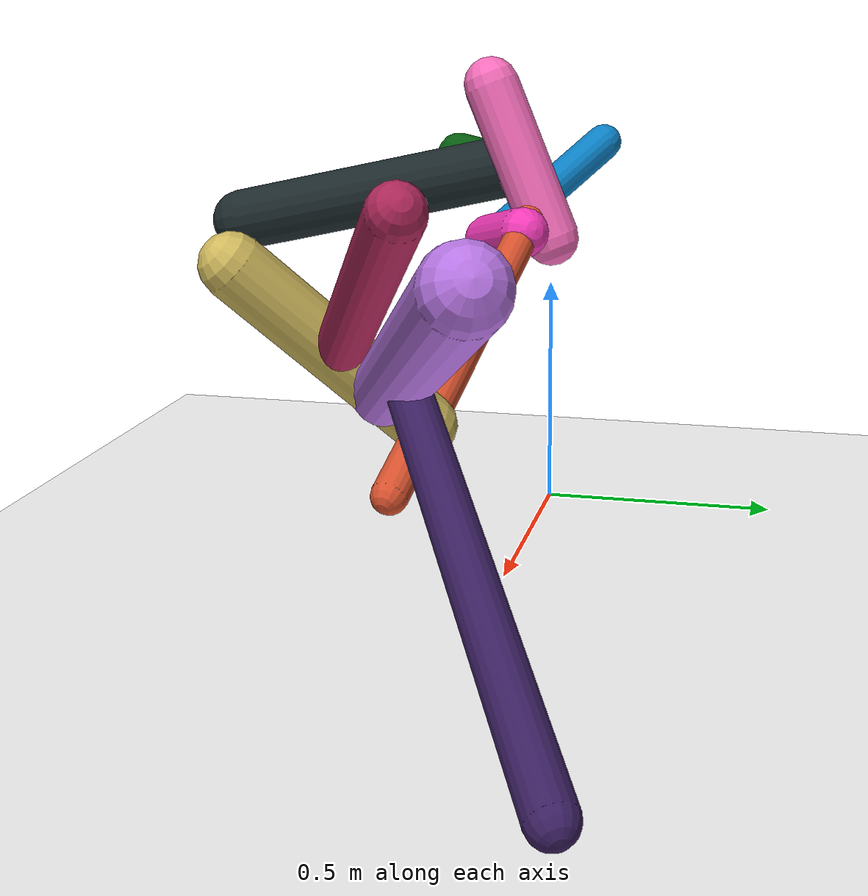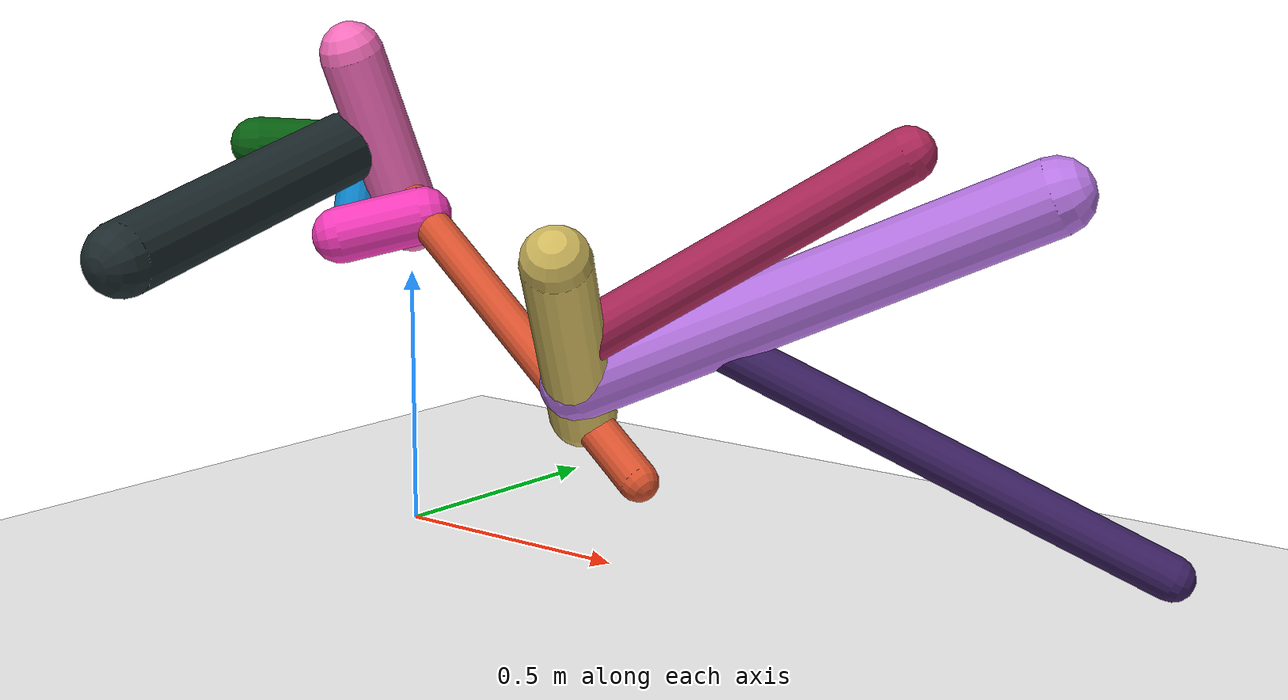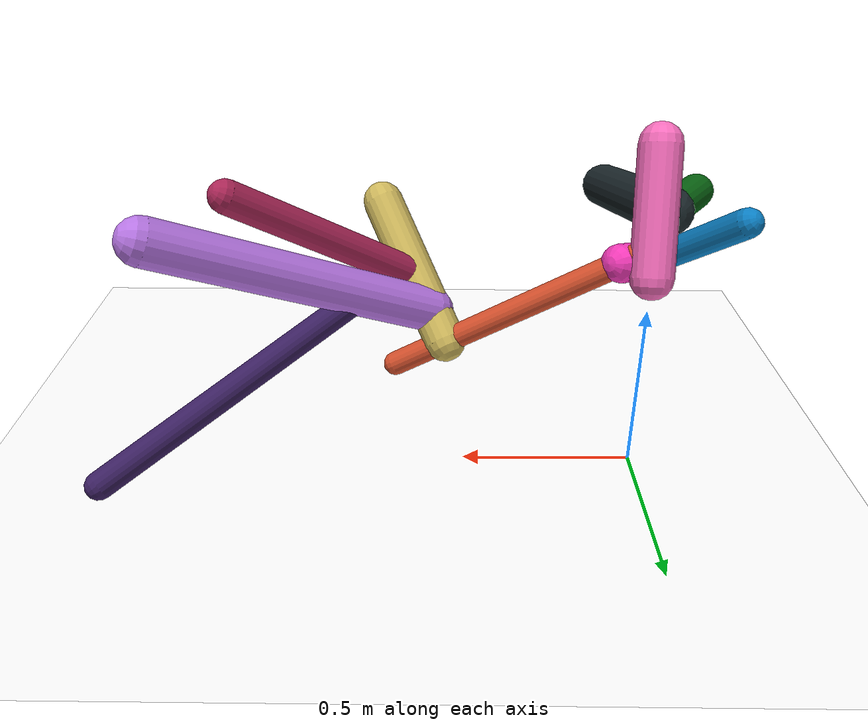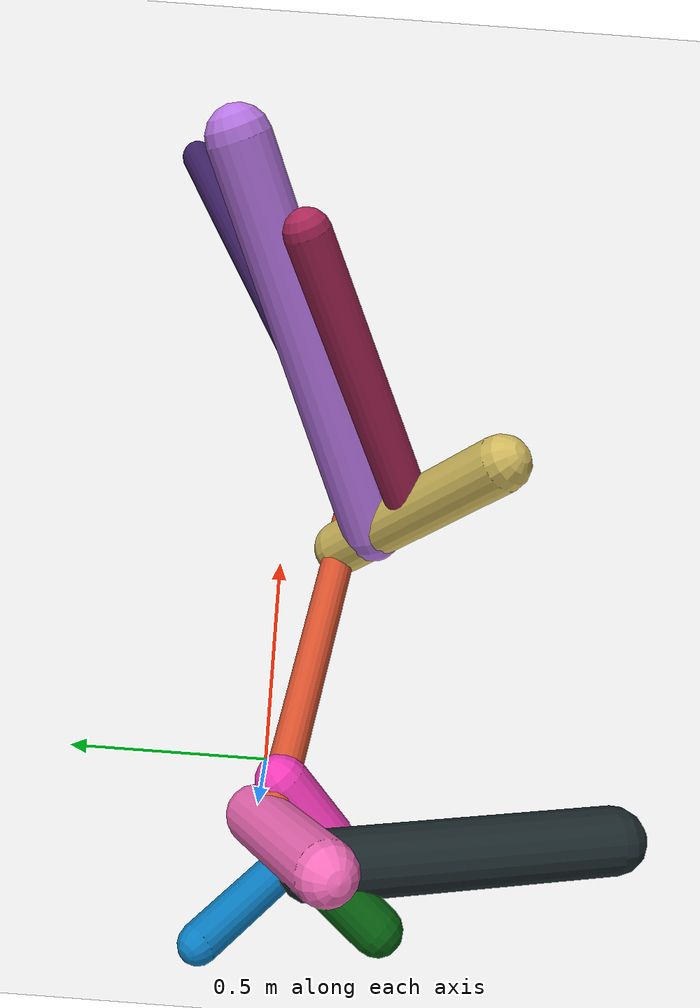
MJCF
<mujoco model="morphology">
  <option timestep="0.01"/>
  <default>
    <default class="/"/>
    <default class="0/"/>
    <default class="0/1/"/>
    <default class="0/1/2/"/>
    <default class="0/1/2/3/"/>
    <default class="0/1/4/"/>
    <default class="0/1/4/5/"/>
    <default class="0/1/4/5/6/"/>
    <default class="0/1/4/7/"/>
    <default class="0/8/"/>
    <default class="0/8/9/"/>
  </default>
  <asset>
    <texture name="texplane" type="2d" builtin="checker" rgb1="0.10000000000000001 0.20000000000000001 0.29999999999999999" rgb2="0.20000000000000001 0.29999999999999999 0.40000000000000002" width="300" height="300"/>
    <material name="MatPlane" class="/" texture="texplane" texrepeat="20 20" specular="1" shininess="1" reflectance="0.5"/>
  </asset>
  <worldbody>
    <light name="//unnamed_light_0" class="/" directional="true" pos="0 0 1.5" dir="0 0 -1.3" cutoff="100" exponent="1" diffuse="1 1 1" specular="0.10000000000000001 0.10000000000000001 0.10000000000000001"/>
    <geom name="ground" class="/" type="plane" size="15 15 0.5" material="MatPlane" rgba="1 1 1 1"/>
    <site name="body" class="/" size="9.9999999999999995e-07 9.9999999999999995e-07 9.9999999999999995e-07" pos="0 0 0.60265794992446897"/>
    <body pos="0 0 0.60265794992446897" name="0/">
      <freejoint name="0/"/>
      <geom name="0/geom" class="0/" type="capsule" contype="1" conaffinity="1" condim="3" size="0.061595366557953321" rgba="0.96620665865200772 0.42740169958640051 0.73669184252601483 1" friction="0.59999999999999998 0.10000000000000001 0.10000000000000001" fromto="0 0 0 -0.014394066082653256 -0.13921526731980804 0.33393729072455125"/>
      <site name="0/end0" class="0/" size="0.0050000000000000001" pos="-0.014394066082653256 -0.13921526731980804 0.33393729072455125"/>
      <site name="0/attach1" class="0/" size="9.9999999999999995e-07 9.9999999999999995e-07 9.9999999999999995e-07" pos="-0.0032131669070986179 -0.031076826196732323 0.074544346638466527"/>
      <body pos="-0.0032131669070986179 -0.031076826196732323 0.074544346638466527" name="0/1/">
        <joint name="0/1/joint/" class="0/" type="hinge" axis="0 0 1" limited="true" range="-43.290607076956533 43.290607076956533"/>
        <geom name="0/1/geom" class="0/1/" type="capsule" contype="1" conaffinity="1" condim="3" size="0.036548331728457832" rgba="0.8442007170233552 0.32123433594918993 0.1788781393090384 1" friction="0.59999999999999998 0.10000000000000001 0.10000000000000001" fromto="0 0 0 0.71100908405011198 -0.14112998063933391 -0.44802502862288618"/>
        <site name="0/1/end1" class="0/1/" size="0.0050000000000000001" pos="0.71100908405011198 -0.14112998063933391 -0.44802502862288618"/>
        <site name="0/1/attach2" class="0/1/" size="9.9999999999999995e-07 9.9999999999999995e-07 9.9999999999999995e-07" pos="0.081483732357123848 -0.016173910893620941 -0.051344986077599832"/>
        <body pos="0.081483732357123848 -0.016173910893620941 -0.051344986077599832" name="0/1/2/">
          <geom name="0/1/2/geom" class="0/1/2/" type="capsule" contype="1" conaffinity="1" condim="3" size="0.055307921790276923" rgba="0.9547276438194221 0.22589878917662698 0.7237424800669493 1" friction="0.59999999999999998 0.10000000000000001 0.10000000000000001" fromto="0 0 0 -0.12019942853873866 -0.10449915807783494 -0.037901787541282594"/>
          <site name="0/1/2/end2" class="0/1/2/" size="0.0050000000000000001" pos="-0.12019942853873866 -0.10449915807783494 -0.037901787541282594"/>
          <site name="0/1/2/attach3" class="0/1/2/" size="9.9999999999999995e-07 9.9999999999999995e-07 9.9999999999999995e-07" pos="-0.10363666219972793 -0.090099795627382739 -0.032679146647654936"/>
          <body pos="-0.10363666219972793 -0.090099795627382739 -0.032679146647654936" name="0/1/2/3/">
            <joint name="0/1/2/3/joint/" class="0/1/2/" type="hinge" axis="-1.3877787807814457e-17 -0.34096504269001487 0.9400759754740019" limited="true" range="-48.27717350779713 48.27717350779713"/>
            <geom name="0/1/2/3/geom" class="0/1/2/3/" type="capsule" contype="1" conaffinity="1" condim="3" size="0.040529293715580554" rgba="0.039841696854068687 0.49964566554185741 0.76776146137492829 1" friction="0.59999999999999998 0.10000000000000001 0.10000000000000001" fromto="0 0 0 -0.17555682166428743 0.22225781843154313 0.20432625168934881"/>
            <site name="0/1/2/3/end3" class="0/1/2/3/" size="0.0050000000000000001" pos="-0.17555682166428743 0.22225781843154313 0.20432625168934881"/>
          </body>
        </body>
        <site name="0/1/attach4" class="0/1/" size="9.9999999999999995e-07 9.9999999999999995e-07 9.9999999999999995e-07" pos="0.55993885281715972 -0.11114367063660041 -0.35283180790246121"/>
        <body pos="0.55993885281715972 -0.11114367063660041 -0.35283180790246121" name="0/1/4/">
          <geom name="0/1/4/geom" class="0/1/4/" type="capsule" contype="1" conaffinity="1" condim="3" size="0.061823331794121611" rgba="0.81133507924247095 0.72180369755090001 0.36147904128355479 1" friction="0.59999999999999998 0.10000000000000001 0.10000000000000001" fromto="0 0 0 0.19498040652691417 -0.30096265932969019 0.33584939295014982"/>
          <site name="0/1/4/end4" class="0/1/4/" size="0.0050000000000000001" pos="0.19498040652691417 -0.30096265932969019 0.33584939295014982"/>
          <site name="0/1/4/attach5" class="0/1/4/" size="9.9999999999999995e-07 9.9999999999999995e-07 9.9999999999999995e-07" pos="0.042614268686164615 -0.065777397111989822 0.07340212549658115"/>
          <body pos="0.042614268686164615 -0.065777397111989822 0.07340212549658115" name="0/1/4/5/">
            <joint name="0/1/4/5/joint/" class="0/1/4/" type="hinge" axis="0.91788176897117957 0.26484776744371641 -0.29554816573685078" limited="true" range="-61.719637554251292 61.719637554251292"/>
            <geom name="0/1/4/5/geom" class="0/1/4/5/" type="capsule" contype="1" conaffinity="1" condim="3" size="0.068085061742810898" rgba="0.71966595520453924 0.46168795173939059 0.89512065887175551 1" friction="0.59999999999999998 0.10000000000000001 0.10000000000000001" fromto="0 0 0 0.74419373419520474 0.33774747333568489 0.35945266016919986"/>
            <site name="0/1/4/5/end5" class="0/1/4/5/" size="0.0050000000000000001" pos="0.74419373419520474 0.33774747333568489 0.35945266016919986"/>
            <site name="0/1/4/5/attach6" class="0/1/4/5/" size="9.9999999999999995e-07 9.9999999999999995e-07 9.9999999999999995e-07" pos="0.1977507254568785 0.089747877205104507 0.095515483468474105"/>
            <body pos="0.1977507254568785 0.089747877205104507 0.095515483468474105" name="0/1/4/5/6/">
              <joint name="0/1/4/5/6/joint/" class="0/1/4/5/" type="hinge" axis="2.7755575615628914e-17 -0.72876730702357118 0.6847614272238266" limited="true" range="-42.965540270636993 42.965540270636993"/>
              <geom name="0/1/4/5/6/geom" class="0/1/4/5/6/" type="capsule" contype="1" conaffinity="1" condim="3" size="0.040762200454460829" rgba="0.22858954516778696 0.12232476198387632 0.37659041255974202 1" friction="0.59999999999999998 0.10000000000000001 0.10000000000000001" fromto="0 0 0 0.70930303062571021 0.39788972655855392 -0.39328808179044672"/>
              <site name="0/1/4/5/6/end6" class="0/1/4/5/6/" size="0.0050000000000000001" pos="0.70930303062571021 0.39788972655855392 -0.39328808179044672"/>
            </body>
          </body>
          <site name="0/1/4/attach7" class="0/1/4/" size="9.9999999999999995e-07 9.9999999999999995e-07 9.9999999999999995e-07" pos="0.091036266606800462 -0.14051933412933659 0.15680793481226829"/>
          <body pos="0.091036266606800462 -0.14051933412933659 0.15680793481226829" name="0/1/4/7/">
            <joint name="0/1/4/7/joint/" class="0/1/4/" type="hinge" axis="0 0.74472779018996005 0.66736835294968755" limited="true" range="-66.122088682094528 66.122088682094528"/>
            <geom name="0/1/4/7/geom" class="0/1/4/7/" type="capsule" contype="1" conaffinity="1" condim="3" size="0.048109095488189965" rgba="0.66999016607443718 0.1509708101612286 0.34312356331305072 1" friction="0.59999999999999998 0.10000000000000001 0.10000000000000001" fromto="0 0 0 0.50226247794900214 0.2636597301738246 0.34410261666408637"/>
            <site name="0/1/4/7/end7" class="0/1/4/7/" size="0.0050000000000000001" pos="0.50226247794900214 0.2636597301738246 0.34410261666408637"/>
          </body>
        </body>
      </body>
      <site name="0/attach8" class="0/" size="9.9999999999999995e-07 9.9999999999999995e-07 9.9999999999999995e-07" pos="-0.0061964260999762214 -0.059930051104546238 0.14375491484610012"/>
      <body pos="-0.0061964260999762214 -0.059930051104546238 0.14375491484610012" name="0/8/">
        <joint name="0/8/joint/" class="0/" type="hinge" axis="0 1 0" limited="true" range="-46.269983882538938 46.269983882538938"/>
        <geom name="0/8/geom" class="0/8/" type="capsule" contype="1" conaffinity="1" condim="3" size="0.050792400452903987" rgba="0.029155239848148384 0.37487631207350736 0.065669747390026401 1" friction="0.59999999999999998 0.10000000000000001 0.10000000000000001" fromto="0 0 0 -0.15556520819508335 -0.18986590191747221 0.018353932621002045"/>
        <site name="0/8/end8" class="0/8/" size="0.0050000000000000001" pos="-0.15556520819508335 -0.18986590191747221 0.018353932621002045"/>
        <site name="0/8/attach9" class="0/8/" size="9.9999999999999995e-07 9.9999999999999995e-07 9.9999999999999995e-07" pos="-0.049194373793732267 -0.060041279525041243 0.0058040626976841427"/>
        <body pos="-0.049194373793732267 -0.060041279525041243 0.0058040626976841427" name="0/8/9/">
          <joint name="0/8/9/joint/" class="0/8/" type="hinge" axis="-6.9388939039072284e-18 0.096219347574769298 0.99536015449297843" limited="true" range="-53.222601572729488 53.222601572729488"/>
          <geom name="0/8/9/geom" class="0/8/9/" type="capsule" contype="1" conaffinity="1" condim="3" size="0.06967845415189336" rgba="0.11312524727209972 0.16142893411050041 0.1751409086134067 1" friction="0.59999999999999998 0.10000000000000001 0.10000000000000001" fromto="0 0 0 0.06229177033060096 -0.60531557260034408 -0.1305467694008281"/>
          <site name="0/8/9/end9" class="0/8/9/" size="0.0050000000000000001" pos="0.06229177033060096 -0.60531557260034408 -0.1305467694008281"/>
        </body>
      </body>
      <camera name="0/iso" class="0/" mode="trackcom" pos="-2.2999999999999998 -2.2999999999999998 1" xyaxes="0.45000000000000001 -0.45000000000000001 0 0.29999999999999999 0.14999999999999999 0.93999999999999995"/>
    </body>
  </worldbody>
  <actuator>
    <motor name="0/1/motor" class="0/1/" ctrllimited="true" ctrlrange="-1 1" gear="86" joint="0/1/joint/"/>
    <motor name="0/1/2/3/motor" class="0/1/2/3/" ctrllimited="true" ctrlrange="-1 1" gear="66" joint="0/1/2/3/joint/"/>
    <motor name="0/1/4/5/motor" class="0/1/4/5/" ctrllimited="true" ctrlrange="-1 1" gear="96" joint="0/1/4/5/joint/"/>
    <motor name="0/1/4/5/6/motor" class="0/1/4/5/6/" ctrllimited="true" ctrlrange="-1 1" gear="86" joint="0/1/4/5/6/joint/"/>
    <motor name="0/1/4/7/motor" class="0/1/4/7/" ctrllimited="true" ctrlrange="-1 1" gear="91" joint="0/1/4/7/joint/"/>
    <motor name="0/8/motor" class="0/8/" ctrllimited="true" ctrlrange="-1 1" gear="73" joint="0/8/joint/"/>
    <motor name="0/8/9/motor" class="0/8/9/" ctrllimited="true" ctrlrange="-1 1" gear="83" joint="0/8/9/joint/"/>
  </actuator>
  <sensor>
    <subtreelinvel name="velocity" body="0/"/>
  </sensor>
</mujoco>
